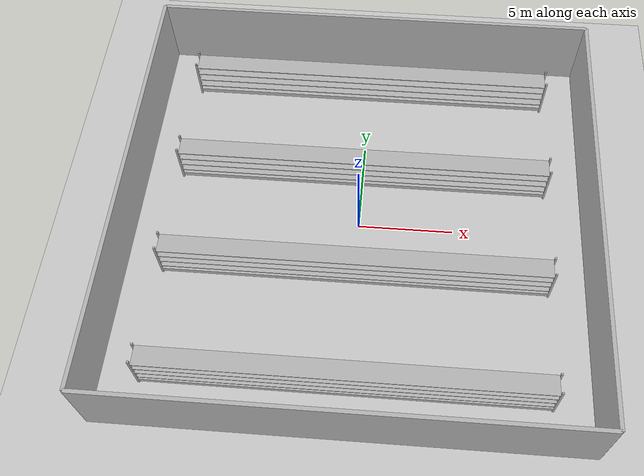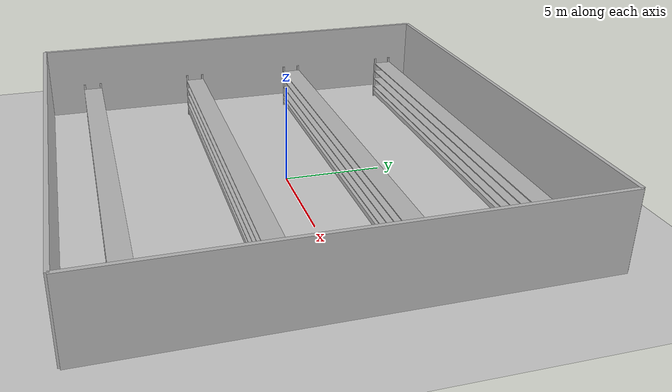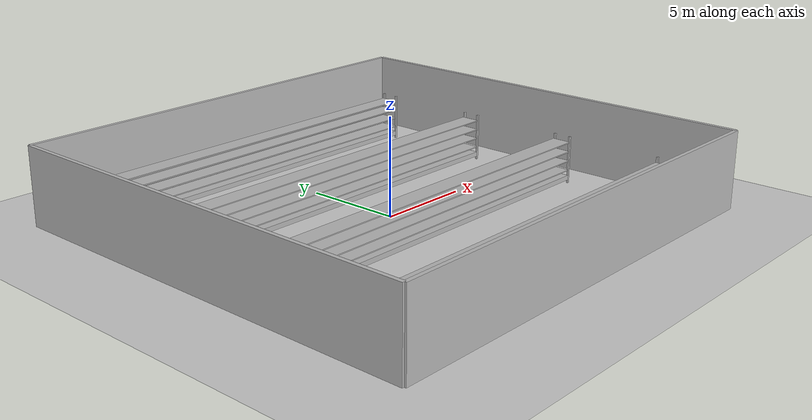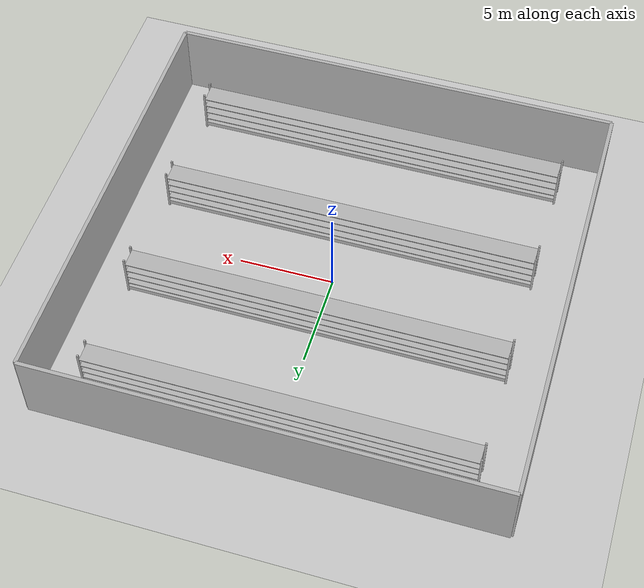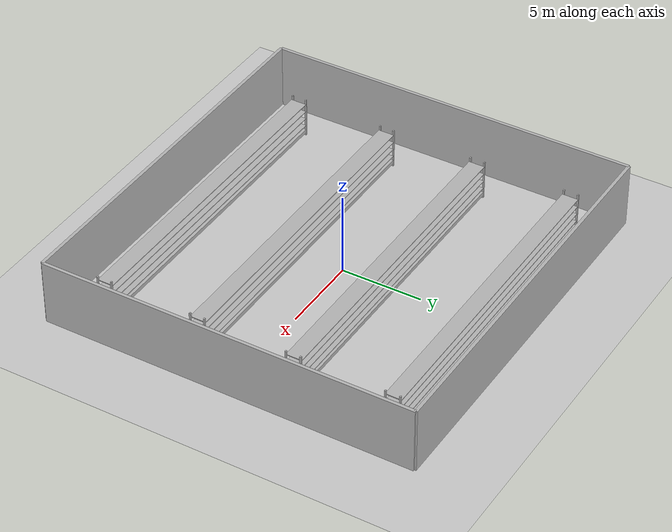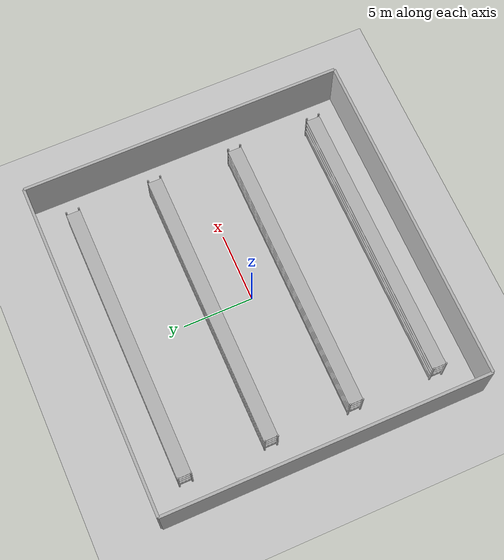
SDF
<?xml version="1.0"?>
<sdf version="1.6">
  <world name="warehouse">

    <!-- ================= GROUND ================= -->
    <include>
      <uri>model://ground_plane</uri>
    </include>

    <include>
      <uri>model://sun</uri>
    </include>

    <!-- =============== SHELF ROW 1 ===================== -->

    <model name="shelf_row_1">
      <static>true</static>
      <pose>0 -9 0 0 0 0</pose>
      <link name="rack1">

        <!-- POSTS -->
        <visual name="r1_flv"><pose>-9.95 -0.45 1.25 0 0 0</pose><geometry><box><size>0.1 0.1 2.5</size></box></geometry></visual>
        <collision name="r1_flc"><pose>-9.95 -0.45 1.25 0 0 0</pose><geometry><box><size>0.1 0.1 2.5</size></box></geometry></collision>

        <visual name="r1_frv"><pose>9.95 -0.45 1.25 0 0 0</pose><geometry><box><size>0.1 0.1 2.5</size></box></geometry></visual>
        <collision name="r1_frc"><pose>9.95 -0.45 1.25 0 0 0</pose><geometry><box><size>0.1 0.1 2.5</size></box></geometry></collision>

        <visual name="r1_blv"><pose>-9.95 0.45 1.25 0 0 0</pose><geometry><box><size>0.1 0.1 2.5</size></box></geometry></visual>
        <collision name="r1_blc"><pose>-9.95 0.45 1.25 0 0 0</pose><geometry><box><size>0.1 0.1 2.5</size></box></geometry></collision>

        <visual name="r1_brv"><pose>9.95 0.45 1.25 0 0 0</pose><geometry><box><size>0.1 0.1 2.5</size></box></geometry></visual>
        <collision name="r1_brc"><pose>9.95 0.45 1.25 0 0 0</pose><geometry><box><size>0.1 0.1 2.5</size></box></geometry></collision>

        <!-- SHELVES -->
        <!-- Bottom shelf: thicker/taller for LiDAR detection -->
        <visual name="r1_s1v"><pose>0 0 0.30 0 0 0</pose><geometry><box><size>19.8 1 0.25</size></box></geometry></visual>
        <collision name="r1_s1c"><pose>0 0 0.30 0 0 0</pose><geometry><box><size>19.8 1 0.25</size></box></geometry></collision>

        <visual name="r1_s2v"><pose>0 0 0.7 0 0 0</pose><geometry><box><size>19.8 1 0.05</size></box></geometry></visual>
        <collision name="r1_s2c"><pose>0 0 0.7 0 0 0</pose><geometry><box><size>19.8 1 0.05</size></box></geometry></collision>

        <visual name="r1_s3v"><pose>0 0 1.2 0 0 0</pose><geometry><box><size>19.8 1 0.05</size></box></geometry></visual>
        <collision name="r1_s3c"><pose>0 0 1.2 0 0 0</pose><geometry><box><size>19.8 1 0.05</size></box></geometry></collision>

        <visual name="r1_s4v"><pose>0 0 1.7 0 0 0</pose><geometry><box><size>19.8 1 0.05</size></box></geometry></visual>
        <collision name="r1_s4c"><pose>0 0 1.7 0 0 0</pose><geometry><box><size>19.8 1 0.05</size></box></geometry></collision>

        <visual name="r1_s5v"><pose>0 0 2.2 0 0 0</pose><geometry><box><size>19.8 1 0.05</size></box></geometry></visual>
        <collision name="r1_s5c"><pose>0 0 2.2 0 0 0</pose><geometry><box><size>19.8 1 0.05</size></box></geometry></collision>

      </link>
    </model>

    <!-- =============== SHELF ROW 2 ===================== -->

    <model name="shelf_row_2">
      <static>true</static>
      <pose>0 -3 0 0 0 0</pose>
      <link name="rack2">

        <!-- POSTS -->
        <visual name="r2_flv"><pose>-9.95 -0.45 1.25 0 0 0</pose><geometry><box><size>0.1 0.1 2.5</size></box></geometry></visual>
        <collision name="r2_flc"><pose>-9.95 -0.45 1.25 0 0 0</pose><geometry><box><size>0.1 0.1 2.5</size></box></geometry></collision>

        <visual name="r2_frv"><pose>9.95 -0.45 1.25 0 0 0</pose><geometry><box><size>0.1 0.1 2.5</size></box></geometry></visual>
        <collision name="r2_frc"><pose>9.95 -0.45 1.25 0 0 0</pose><geometry><box><size>0.1 0.1 2.5</size></box></geometry></collision>

        <visual name="r2_blv"><pose>-9.95 0.45 1.25 0 0 0</pose><geometry><box><size>0.1 0.1 2.5</size></box></geometry></visual>
        <collision name="r2_blc"><pose>-9.95 0.45 1.25 0 0 0</pose><geometry><box><size>0.1 0.1 2.5</size></box></geometry></collision>

        <visual name="r2_brv"><pose>9.95 0.45 1.25 0 0 0</pose><geometry><box><size>0.1 0.1 2.5</size></box></geometry></visual>
        <collision name="r2_brc"><pose>9.95 0.45 1.25 0 0 0</pose><geometry><box><size>0.1 0.1 2.5</size></box></geometry></collision>

        <!-- SHELVES -->
        <!-- Bottom shelf: thicker/taller for LiDAR detection -->
        <visual name="r2_s1v"><pose>0 0 0.30 0 0 0</pose><geometry><box><size>19.8 1 0.25</size></box></geometry></visual>
        <collision name="r2_s1c"><pose>0 0 0.30 0 0 0</pose><geometry><box><size>19.8 1 0.25</size></box></geometry></collision>

        <visual name="r2_s2v"><pose>0 0 0.7 0 0 0</pose><geometry><box><size>19.8 1 0.05</size></box></geometry></visual>
        <collision name="r2_s2c"><pose>0 0 0.7 0 0 0</pose><geometry><box><size>19.8 1 0.05</size></box></geometry></collision>

        <visual name="r2_s3v"><pose>0 0 1.2 0 0 0</pose><geometry><box><size>19.8 1 0.05</size></box></geometry></visual>
        <collision name="r2_s3c"><pose>0 0 1.2 0 0 0</pose><geometry><box><size>19.8 1 0.05</size></box></geometry></collision>

        <visual name="r2_s4v"><pose>0 0 1.7 0 0 0</pose><geometry><box><size>19.8 1 0.05</size></box></geometry></visual>
        <collision name="r2_s4c"><pose>0 0 1.7 0 0 0</pose><geometry><box><size>19.8 1 0.05</size></box></geometry></collision>

        <visual name="r2_s5v"><pose>0 0 2.2 0 0 0</pose><geometry><box><size>19.8 1 0.05</size></box></geometry></visual>
        <collision name="r2_s5c"><pose>0 0 2.2 0 0 0</pose><geometry><box><size>19.8 1 0.05</size></box></geometry></collision>

      </link>
    </model>

    <!-- ================= SHELF ROW 3 ================= -->
    <model name="shelf_row_3">
      <static>true</static>
      <pose>0 3 0 0 0 0</pose>
      <link name="rack3">

        <!-- POSTS -->
        <visual name="r3_flv"><pose>-9.95 -0.45 1.25 0 0 0</pose><geometry><box><size>0.1 0.1 2.5</size></box></geometry></visual>
        <collision name="r3_flc"><pose>-9.95 -0.45 1.25 0 0 0</pose><geometry><box><size>0.1 0.1 2.5</size></box></geometry></collision>

        <visual name="r3_frv"><pose>9.95 -0.45 1.25 0 0 0</pose><geometry><box><size>0.1 0.1 2.5</size></box></geometry></visual>
        <collision name="r3_frc"><pose>9.95 -0.45 1.25 0 0 0</pose><geometry><box><size>0.1 0.1 2.5</size></box></geometry></collision>

        <visual name="r3_blv"><pose>-9.95 0.45 1.25 0 0 0</pose><geometry><box><size>0.1 0.1 2.5</size></box></geometry></visual>
        <collision name="r3_blc"><pose>-9.95 0.45 1.25 0 0 0</pose><geometry><box><size>0.1 0.1 2.5</size></box></geometry></collision>

        <visual name="r3_brv"><pose>9.95 0.45 1.25 0 0 0</pose><geometry><box><size>0.1 0.1 2.5</size></box></geometry></visual>
        <collision name="r3_brc"><pose>9.95 0.45 1.25 0 0 0</pose><geometry><box><size>0.1 0.1 2.5</size></box></geometry></collision>

        <!-- SHELVES -->
        <!-- Bottom shelf: thicker/taller for LiDAR detection -->
        <visual name="r3_s1v"><pose>0 0 0.30 0 0 0</pose><geometry><box><size>19.8 1 0.25</size></box></geometry></visual>
        <collision name="r3_s1c"><pose>0 0 0.30 0 0 0</pose><geometry><box><size>19.8 1 0.25</size></box></geometry></collision>

        <visual name="r3_s2v"><pose>0 0 0.7 0 0 0</pose><geometry><box><size>19.8 1 0.05</size></box></geometry></visual>
        <collision name="r3_s2c"><pose>0 0 0.7 0 0 0</pose><geometry><box><size>19.8 1 0.05</size></box></geometry></collision>

        <visual name="r3_s3v"><pose>0 0 1.2 0 0 0</pose><geometry><box><size>19.8 1 0.05</size></box></geometry></visual>
        <collision name="r3_s3c"><pose>0 0 1.2 0 0 0</pose><geometry><box><size>19.8 1 0.05</size></box></geometry></collision>

        <visual name="r3_s4v"><pose>0 0 1.7 0 0 0</pose><geometry><box><size>19.8 1 0.05</size></box></geometry></visual>
        <collision name="r3_s4c"><pose>0 0 1.7 0 0 0</pose><geometry><box><size>19.8 1 0.05</size></box></geometry></collision>

        <visual name="r3_s5v"><pose>0 0 2.2 0 0 0</pose><geometry><box><size>19.8 1 0.05</size></box></geometry></visual>
        <collision name="r3_s5c"><pose>0 0 2.2 0 0 0</pose><geometry><box><size>19.8 1 0.05</size></box></geometry></collision>

      </link>
    </model>

    <!-- ================= SHELF ROW 4 ================= -->
    <model name="shelf_row_4">
      <static>true</static>
      <pose>0 9 0 0 0 0</pose>
      <link name="rack4">

        <!-- POSTS -->
        <visual name="r4_flv"><pose>-9.95 -0.45 1.25 0 0 0</pose><geometry><box><size>0.1 0.1 2.5</size></box></geometry></visual>
        <collision name="r4_flc"><pose>-9.95 -0.45 1.25 0 0 0</pose><geometry><box><size>0.1 0.1 2.5</size></box></geometry></collision>

        <visual name="r4_frv"><pose>9.95 -0.45 1.25 0 0 0</pose><geometry><box><size>0.1 0.1 2.5</size></box></geometry></visual>
        <collision name="r4_frc"><pose>9.95 -0.45 1.25 0 0 0</pose><geometry><box><size>0.1 0.1 2.5</size></box></geometry></collision>

        <visual name="r4_blv"><pose>-9.95 0.45 1.25 0 0 0</pose><geometry><box><size>0.1 0.1 2.5</size></box></geometry></visual>
        <collision name="r4_blc"><pose>-9.95 0.45 1.25 0 0 0</pose><geometry><box><size>0.1 0.1 2.5</size></box></geometry></collision>

        <visual name="r4_brv"><pose>9.95 0.45 1.25 0 0 0</pose><geometry><box><size>0.1 0.1 2.5</size></box></geometry></visual>
        <collision name="r4_brc"><pose>9.95 0.45 1.25 0 0 0</pose><geometry><box><size>0.1 0.1 2.5</size></box></geometry></collision>

        <!-- SHELVES -->
        <!-- Bottom shelf: thicker/taller for LiDAR detection -->
        <visual name="r4_s1v"><pose>0 0 0.30 0 0 0</pose><geometry><box><size>19.8 1 0.25</size></box></geometry></visual>
        <collision name="r4_s1c"><pose>0 0 0.30 0 0 0</pose><geometry><box><size>19.8 1 0.25</size></box></geometry></collision>

        <visual name="r4_s2v"><pose>0 0 0.7 0 0 0</pose><geometry><box><size>19.8 1 0.05</size></box></geometry></visual>
        <collision name="r4_s2c"><pose>0 0 0.7 0 0 0</pose><geometry><box><size>19.8 1 0.05</size></box></geometry></collision>

        <visual name="r4_s3v"><pose>0 0 1.2 0 0 0</pose><geometry><box><size>19.8 1 0.05</size></box></geometry></visual>
        <collision name="r4_s3c"><pose>0 0 1.2 0 0 0</pose><geometry><box><size>19.8 1 0.05</size></box></geometry></collision>

        <visual name="r4_s4v"><pose>0 0 1.7 0 0 0</pose><geometry><box><size>19.8 1 0.05</size></box></geometry></visual>
        <collision name="r4_s4c"><pose>0 0 1.7 0 0 0</pose><geometry><box><size>19.8 1 0.05</size></box></geometry></collision>

        <visual name="r4_s5v"><pose>0 0 2.2 0 0 0</pose><geometry><box><size>19.8 1 0.05</size></box></geometry></visual>
        <collision name="r4_s5c"><pose>0 0 2.2 0 0 0</pose><geometry><box><size>19.8 1 0.05</size></box></geometry></collision>

      </link>
    </model>

    <!-- ================= WALLS ================= -->

    <model name="wall_back">
      <static>true</static>
      <pose>-12 0 2 0 0 0</pose>
      <link name="link">
        <collision name="col"><geometry><box><size>0.2 23 4</size></box></geometry></collision>
        <visual name="vis"><geometry><box><size>0.2 23 4</size></box></geometry></visual>
      </link>
    </model>

    <model name="wall_front">
      <static>true</static>
      <pose>12 0 2 0 0 0</pose>
      <link name="link">
        <collision name="col"><geometry><box><size>0.2 23 4</size></box></geometry></collision>
        <visual name="vis"><geometry><box><size>0.2 23 4</size></box></geometry></visual>
      </link>
    </model>

    <model name="wall_left">
      <static>true</static>
      <pose>0 -11.5 2 0 0 0</pose>
      <link name="link">
        <collision name="col"><geometry><box><size>24 0.2 4</size></box></geometry></collision>
        <visual name="vis"><geometry><box><size>24 0.2 4</size></box></geometry></visual>
      </link>
    </model>

    <model name="wall_right">
      <static>true</static>
      <pose>0 11.5 2 0 0 0</pose>
      <link name="link">
        <collision name="col"><geometry><box><size>24 0.2 4</size></box></geometry></collision>
        <visual name="vis"><geometry><box><size>24 0.2 4</size></box></geometry></visual>
      </link>
    </model>

    <!-- ================= BOXES START ================= -->
    <!-- (you can add boxes here later) -->

  </world>
</sdf>
